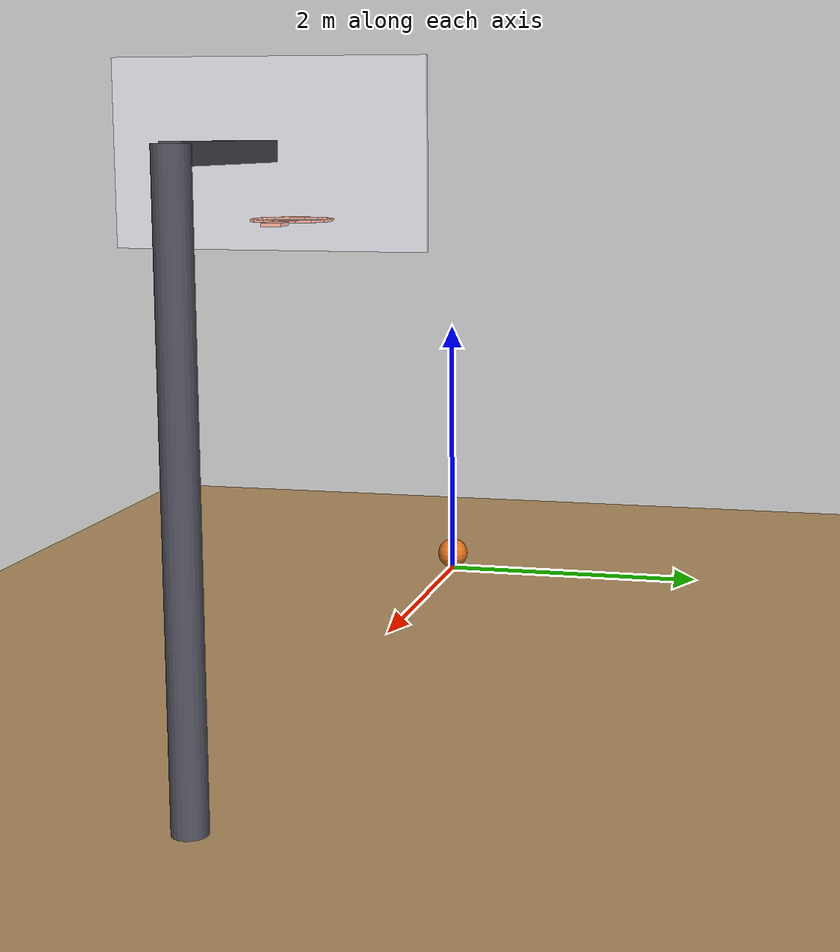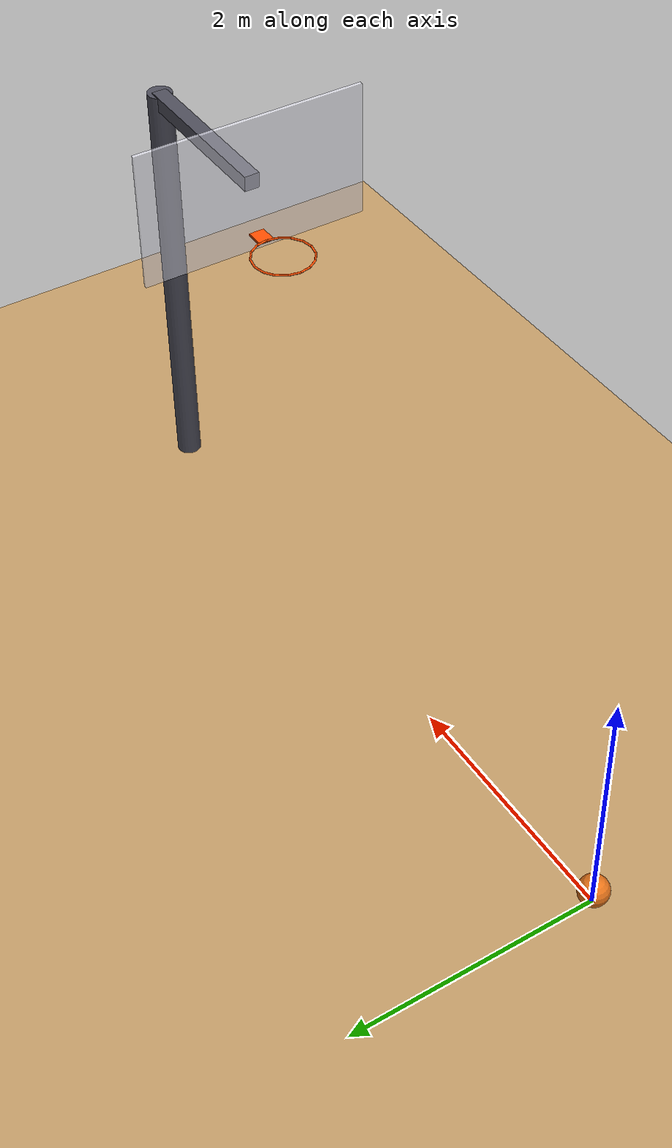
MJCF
<mujoco model="basketball_shot">
  <option timestep="0.002" gravity="0 0 -9.81"/>
  <worldbody>
    <light name="sun" pos="2 -3 8" dir="0 0.3 -1" diffuse="0.8 0.8 0.8"/>
    <geom name="floor" type="plane" size="10 10 0.1" rgba="0.75 0.6 0.4 1"/>

    <body name="ball" pos="0 0 0.121">
      <freejoint name="ball_free"/>
      <geom name="ball" type="sphere" size="0.12" mass="0.62" rgba="0.9 0.45 0.1 1" solref="0.01 0.3"/>
    </body>

    <body name="hoop" pos="4 0 3.05">
      <geom name="rim_00" type="capsule" size="0.008" fromto="0.237 0 0 0.2190 0.0907 0" rgba="1 0.3 0 1"/>
      <geom name="rim_01" type="capsule" size="0.008" fromto="0.2190 0.0907 0 0.1676 0.1676 0" rgba="1 0.3 0 1"/>
      <geom name="rim_02" type="capsule" size="0.008" fromto="0.1676 0.1676 0 0.0907 0.2190 0" rgba="1 0.3 0 1"/>
      <geom name="rim_03" type="capsule" size="0.008" fromto="0.0907 0.2190 0 0 0.237 0" rgba="1 0.3 0 1"/>
      <geom name="rim_04" type="capsule" size="0.008" fromto="0 0.237 0 -0.0907 0.2190 0" rgba="1 0.3 0 1"/>
      <geom name="rim_05" type="capsule" size="0.008" fromto="-0.0907 0.2190 0 -0.1676 0.1676 0" rgba="1 0.3 0 1"/>
      <geom name="rim_06" type="capsule" size="0.008" fromto="-0.1676 0.1676 0 -0.2190 0.0907 0" rgba="1 0.3 0 1"/>
      <geom name="rim_07" type="capsule" size="0.008" fromto="-0.2190 0.0907 0 -0.237 0 0" rgba="1 0.3 0 1"/>
      <geom name="rim_08" type="capsule" size="0.008" fromto="-0.237 0 0 -0.2190 -0.0907 0" rgba="1 0.3 0 1"/>
      <geom name="rim_09" type="capsule" size="0.008" fromto="-0.2190 -0.0907 0 -0.1676 -0.1676 0" rgba="1 0.3 0 1"/>
      <geom name="rim_10" type="capsule" size="0.008" fromto="-0.1676 -0.1676 0 -0.0907 -0.2190 0" rgba="1 0.3 0 1"/>
      <geom name="rim_11" type="capsule" size="0.008" fromto="-0.0907 -0.2190 0 0 -0.237 0" rgba="1 0.3 0 1"/>
      <geom name="rim_12" type="capsule" size="0.008" fromto="0 -0.237 0 0.0907 -0.2190 0" rgba="1 0.3 0 1"/>
      <geom name="rim_13" type="capsule" size="0.008" fromto="0.0907 -0.2190 0 0.1676 -0.1676 0" rgba="1 0.3 0 1"/>
      <geom name="rim_14" type="capsule" size="0.008" fromto="0.1676 -0.1676 0 0.2190 -0.0907 0" rgba="1 0.3 0 1"/>
      <geom name="rim_15" type="capsule" size="0.008" fromto="0.2190 -0.0907 0 0.237 0 0" rgba="1 0.3 0 1"/>
      <geom name="rim_bracket" type="box" size="0.07 0.06 0.01" pos="0.31 0 -0.01" rgba="1 0.3 0 1"/>
    </body>

    <body name="backboard" pos="4.395 0 3.435">
      <geom name="backboard" type="box" size="0.015 0.915 0.535" rgba="0.95 0.95 1 0.6"/>
    </body>

    <body name="support" pos="5.8 0 0">
      <geom name="pole" type="cylinder" size="0.1 1.75" pos="0 0 1.75" rgba="0.3 0.3 0.35 1"/>
      <geom name="arm" type="box" size="0.7 0.06 0.06" pos="-0.69 0 3.45" rgba="0.3 0.3 0.35 1"/>
    </body>
  </worldbody>

  <keyframe>
    <key name="start" qpos="0 0 0.121 1 0 0 0" qvel="3.0087 0 8.725 0 0 0"/>
  </keyframe>
</mujoco>
